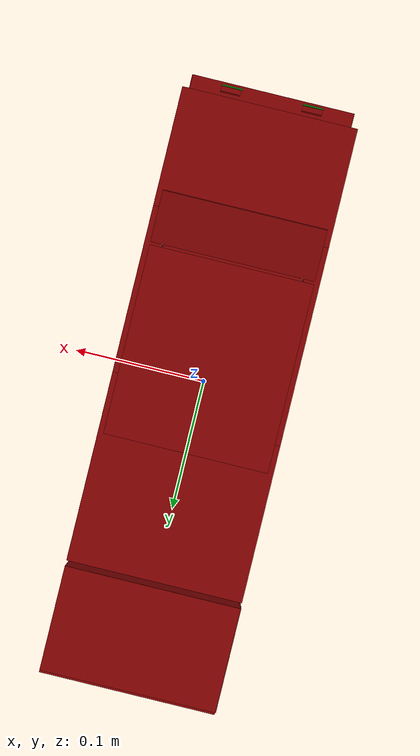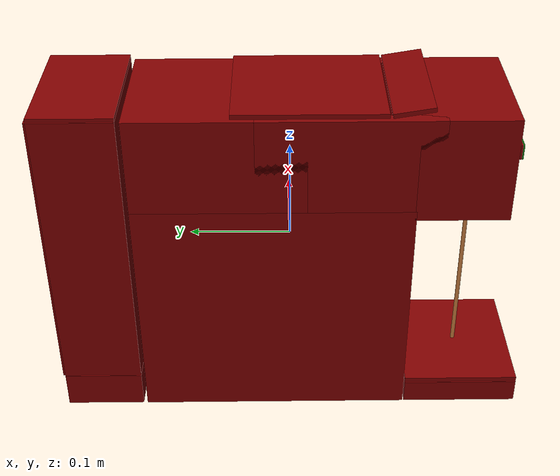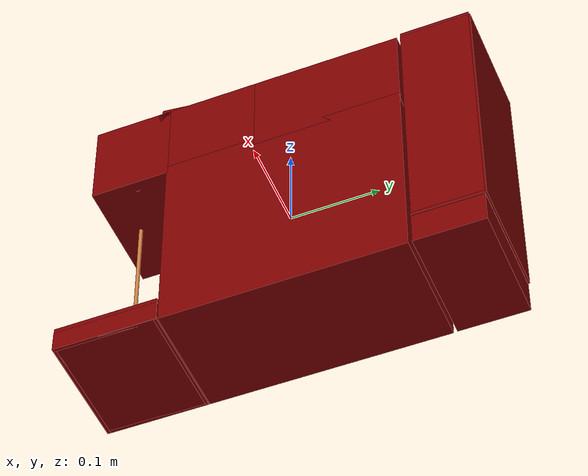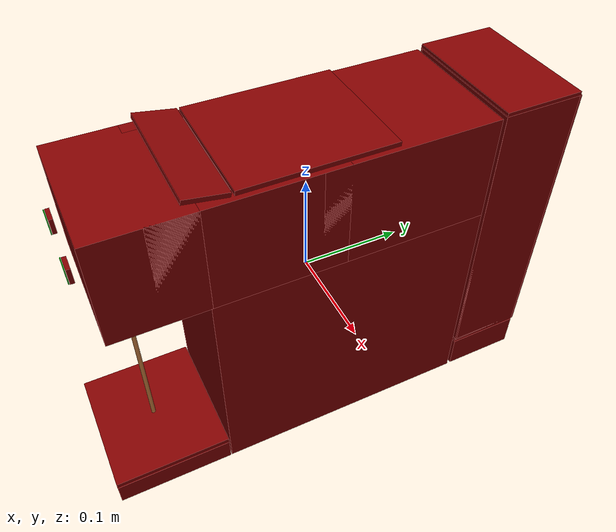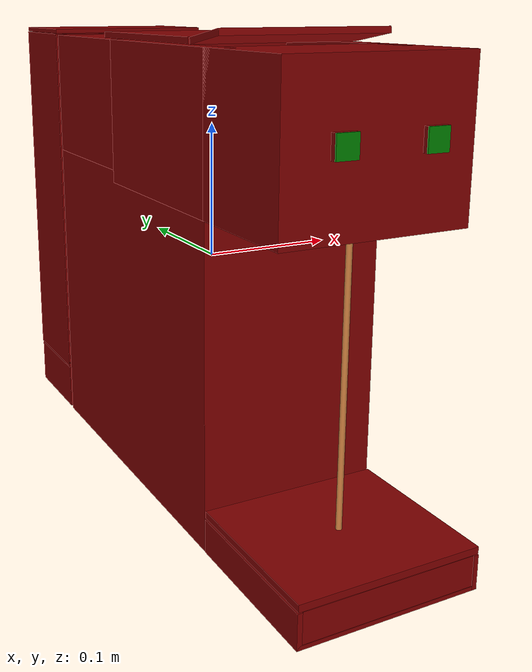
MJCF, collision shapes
<?xml version='1.0' encoding='UTF-8'?>
<mujoco model="model">
  <compiler angle="radian"/>
  <asset>
    <mesh file="visuals/Body001.obj" name="Body001_vis"/>
    <mesh file="visuals/Button001.obj" name="Button001_vis"/>
    <mesh file="visuals/Button002.obj" name="Button002_vis"/>
    <mesh file="visuals/Container001_Clear.obj" name="Container001_Clear_vis"/>
    <mesh file="visuals/Lid001.obj" name="Lid001_vis"/>
    <mesh file="visuals/Lid002_Clear.obj" name="Lid002_Clear_vis"/>
    <mesh file="visuals/Lid003.obj" name="Lid003_vis"/>
    <texture file="visuals/T_BC001.png" name="Body001_material" type="2d"/>
    <material name="Body001_material" rgba="1 1 1 1.0" texture="Body001_material" shininess="0.4472135901451111" specular="0.3103448502657381"/>
    <texture file="visuals/T_BC001.png" name="Button001_material" type="2d"/>
    <material name="Button001_material" rgba="1 1 1 1.0" texture="Button001_material" shininess="0.4472135901451111" specular="0.3103448502657381"/>
    <texture file="visuals/T_BC001.png" name="Button002_material" type="2d"/>
    <material name="Button002_material" rgba="1 1 1 1.0" texture="Button002_material" shininess="0.4472135901451111" specular="0.3103448502657381"/>
    <texture file="visuals/T_BC001.png" name="Container001_Clear_material" type="2d"/>
    <material name="Container001_Clear_material" rgba="1 1 1 0.5" texture="Container001_Clear_material" shininess="0.4472135901451111" specular="0.3103448502657381"/>
    <texture file="visuals/T_BC001.png" name="Lid002_Clear_material" type="2d"/>
    <material name="Lid002_Clear_material" rgba="1 1 1 0.5" texture="Lid002_Clear_material" shininess="0.4472135901451111" specular="0.3103448502657381"/>
    <texture file="visuals/T_BC001.png" name="Lid001_material" type="2d"/>
    <material name="Lid001_material" rgba="1 1 1 1.0" texture="Lid001_material" shininess="0.4472135901451111" specular="0.3103448502657381"/>
    <texture file="visuals/T_BC001.png" name="Lid003_material" type="2d"/>
    <material name="Lid003_material" rgba="1 1 1 1.0" texture="Lid003_material" shininess="0.4472135901451111" specular="0.3103448502657381"/>
  </asset>
  <default>
    <default class="visual">
      <geom conaffinity="0" contype="0" group="1" type="mesh"/>
    </default>
    <default class="collision">
      <geom group="0" rgba="0.5 0 0 0.5"/>
    </default>
    <default class="spawn">
      <geom group="0" rgba="1 1 1 0.5" contype="0" conaffinity="0"/>
      <site group="0" rgba="1 1 1 0.5"/>
    </default>
    <default class="region">
      <geom group="1" conaffinity="0" contype="0" rgba="0 1 0 0"/>
    </default>
  </default>
  <worldbody>
    <body>
      <body name="object">
        <geom class="collision" type="box" pos="-0.030616149306297302 -0.216434508562088 0.11246190220117569" size="0.007607913576066494 0.000489116064272821 0.007607907056808472" quat="1.0 0.0 0.0 0.0" name="start_button_1" rgba="0.0 0.5 0 0.5"/>
        <geom class="collision" type="box" pos="0.03072347491979599 -0.216434508562088 0.11246190220117569" size="0.007607913576066494 0.000489116064272821 0.007607907056808472" quat="1.0 0.0 0.0 0.0" name="start_button_2" rgba="0.0 0.5 0 0.5"/>
        <site type="cylinder" rgba="0.8 0.5 0.25 1" size="0.0021251689177006483 0.1137041226029396" pos="0.0005083419382572174 -0.17765355110168457 -0.05330929532647133" name="coffee_liquid"/>
        <site rgba="0 0 0 0" size="0.009999999776482582 0.009999999776482582" pos="0.0 -0.17718325555324554 -0.14677682518959045" name="receptacle_place_site"/>
        <geom mesh="Body001_vis" type="mesh" solimp="0.998 0.998 0.001" solref="0.001 1" density="100" friction="0.95 0.3 0.1" class="visual" material="Body001_material"/>
        <geom class="collision" type="box" pos="-8.271806125530277e-25 0.016483120620250702 -0.05334841087460518" size="0.06600822508335114 0.13423846662044525 0.11875934898853302" quat="1.0 0.0 0.0 0.0"/>
        <geom class="collision" type="box" pos="-8.271806125530277e-25 -0.16104024648666382 0.10836664587259293" size="0.06600822508335114 0.04473061114549637 0.052359841763973236" quat="1.0 0.0 0.0 0.0"/>
        <geom class="collision" type="box" pos="-8.271806125530277e-25 0.19386471807956696 -0.1530047059059143" size="0.06600822508335114 0.03906860575079918 0.018554944545030594" quat="1.0 0.0 0.0 0.0"/>
        <geom class="collision" type="box" pos="0.0 -0.12081402540206909 -0.15943431854248047" size="0.06600822508335114 0.001609809696674347 0.012229759246110916" quat="1.0 0.0 0.0 0.0"/>
        <geom class="collision" type="box" pos="-8.271806125530277e-25 0.06766687333583832 0.10836654901504517" size="0.06600822508335114 0.08305472135543823 0.052359744906425476" quat="1.0 0.0 0.0 0.0"/>
        <geom class="collision" type="box" pos="0.05978389456868172 -0.07468283921480179 0.10836664587259293" size="0.006224330514669418 0.08350387960672379 0.052359841763973236" quat="1.0 0.0 0.0 0.0"/>
        <geom class="collision" type="box" pos="-0.059783875942230225 -0.05356161296367645 0.10836664587259293" size="0.00622435100376606 0.08640749752521515 0.052359841763973236" quat="1.0 0.0 0.0 0.0"/>
        <geom class="collision" type="box" pos="0.0 -0.1771990954875946 -0.1701851785182953" size="0.06600822508335114 0.05799488350749016 0.0014789002016186714" quat="1.0 0.0 0.0 0.0"/>
        <geom class="collision" type="box" pos="-0.06474342942237854 -0.1771990954875946 -0.15943431854248047" size="0.0017591975629329681 0.05799488350749016 0.012229759246110916" quat="1.0 0.0 0.0 0.0"/>
        <geom class="collision" type="box" pos="0.06474414467811584 -0.1771990954875946 -0.15943431854248047" size="0.0017591975629329681 0.05799488350749016 0.012229759246110916" quat="1.0 0.0 0.0 0.0"/>
        <geom class="collision" type="box" pos="0.0 -0.23299594223499298 -0.15943431854248047" size="0.06600822508335114 0.0017591938376426697 0.012229759246110916" quat="1.0 0.0 0.0 0.0"/>
        <body name="Button001">
          <joint axis="0.0 1.0 0.0" pos="-0.030695753172039986 -0.21127310395240784 0.11243197321891785" limited="true" name="Button001_joint" range="0.0 0.002" type="slide" damping="1" frictionloss="1" armature=".01" stiffness="0.05"/>
          <geom mesh="Button001_vis" type="mesh" solimp="0.998 0.998 0.001" solref="0.001 1" density="100" friction="0.95 0.3 0.1" class="visual" material="Button001_material"/>
          <geom class="collision" type="box" pos="-0.030616149306297302 -0.21367265284061432 0.11246190220117569" size="0.007607913576066494 0.0018707525450736284 0.007607907056808472" quat="1.0 0.0 0.0 0.0"/>
        </body>
        <body name="Button002">
          <joint axis="0.0 1.0 0.0" pos="-0.010228728875517845 -0.21127310395240784 0.11243197321891785" limited="true" name="Button002_joint" range="0.0 0.002" type="slide" damping="1" frictionloss="1" armature=".01" stiffness="0.05"/>
          <geom mesh="Button002_vis" type="mesh" solimp="0.998 0.998 0.001" solref="0.001 1" density="100" friction="0.95 0.3 0.1" class="visual" material="Button002_material"/>
          <geom class="collision" type="box" pos="0.031241320073604584 -0.2137511819601059 0.11246190220117569" size="0.007607912644743919 0.0018707525450736284 0.007607907056808472" quat="1.0 0.0 0.0 0.0"/>
        </body>
        <body name="Container001_Clear">
          <joint axis="0.0 0.0 1.0" pos="0.0 0.19485530257225037 -0.005329817533493042" limited="true" name="Container001_Clear_joint" range="0.0 0.08" type="slide" damping="1" frictionloss="1" armature=".01" stiffness="0.05"/>
          <geom mesh="Container001_Clear_vis" type="mesh" solimp="0.998 0.998 0.001" solref="0.001 1" density="100" friction="0.95 0.3 0.1" class="visual" material="Container001_Clear_material"/>
          <geom class="collision" type="box" pos="1.2940673237491907e-17 0.23374684154987335 0.014187321066856384" size="0.06600822508335114 0.0010084304958581924 0.1471361666917801" quat="1.0 0.0 0.0 0.0"/>
          <geom class="collision" type="box" pos="1.2940673237491907e-17 0.15572774410247803 0.014187321066856384" size="0.06600822508335114 0.0009316392242908478 0.1471361666917801" quat="1.0 0.0 0.0 0.0"/>
          <geom class="collision" type="box" pos="0.06524717807769775 0.19386471807956696 0.014187321066856384" size="0.0007610432803630829 0.03906860575079918 0.1471361666917801" quat="1.0 0.0 0.0 0.0"/>
          <geom class="collision" type="box" pos="-0.06565093994140625 0.19386471807956696 0.014187321066856384" size="0.0008520223200321198 0.03906860575079918 0.1471361666917801" quat="1.0 0.0 0.0 0.0"/>
          <geom class="collision" type="box" pos="-8.271806125530277e-25 0.19386471807956696 -0.13111083209514618" size="0.06600822508335114 0.03906860575079918 0.0016964892856776714" quat="1.0 0.0 0.0 0.0"/>
          <body name="Lid002_Clear">
            <joint axis="0.0 0.0 1.0" pos="2.086162353975851e-08 0.19485530257225037 0.15852975845336914" limited="true" name="Lid002_Clear_joint" range="0.0 0.08" type="slide" damping="1" frictionloss="1" armature=".01" stiffness="0.05"/>
            <geom mesh="Lid002_Clear_vis" type="mesh" solimp="0.998 0.998 0.001" solref="0.001 1" density="100" friction="0.95 0.3 0.1" class="visual" material="Lid002_Clear_material"/>
            <geom class="collision" type="box" pos="-8.271806125530277e-25 0.19386471807956696 0.16363339126110077" size="0.06600822508335114 0.03906860575079918 0.0016964892856776714" quat="1.0 0.0 0.0 0.0"/>
          </body>
        </body>
        <body name="Lid001">
          <joint axis="-1.0 0.0 0.0" pos="3.0219553082133643e-07 0.05478830635547638 0.16332246363162994" limited="true" name="Lid001_joint" range="0.0 1.5707963267948966" type="hinge" damping="1" frictionloss="1" armature=".01" stiffness="0.05"/>
          <geom mesh="Lid001_vis" type="mesh" solimp="0.998 0.998 0.001" solref="0.001 1" density="100" friction="0.95 0.3 0.1" class="visual" material="Lid001_material"/>
          <geom class="collision" type="box" pos="0.0 -0.016775110736489296 0.16355444490909576" size="0.061771005392074585 0.07097547501325607 0.002184169599786401" quat="1.0 0.0 0.0 0.0"/>
          <geom class="collision" type="box" pos="-6.685153252476867e-19 -0.10946334898471832 0.1665651649236679" size="0.061771005392074585 0.019445419311523438 0.002184169366955757" quat="0.9967008829116821 -0.08116225898265839 1.802158879106825e-17 -3.546500115402923e-24"/>
        </body>
        <body name="Lid003">
          <joint axis="0.0 0.0 1.0" pos="3.948807716369629e-07 -0.17683036625385284 -0.1449340581893921" limited="true" name="Lid003_joint" range="0.0 0.02" type="slide" damping="1" frictionloss="1" armature=".01" stiffness="0.05"/>
          <geom mesh="Lid003_vis" type="mesh" solimp="0.998 0.998 0.001" solref="0.001 1" density="100" friction="0.95 0.3 0.1" class="visual" material="Lid003_material"/>
          <geom class="collision" type="box" pos="1.5772807305975465e-17 -0.1771990954875946 -0.14394459128379822" size="0.06600822508335114 0.05799487978219986 0.002486852463334799" quat="1.0 0.0 0.0 0.0"/>
        </body>
        <geom class="region" name="reg_main" type="box" pos="0.0 0.0 0.0" size="0.06685127317905426 0.234755277633667 0.17198313772678375"/>
      </body>
    </body>
  </worldbody>
  <actuator>
    <motor name="Button001_joint_actuator" joint="Button001_joint" gear="0.5"/>
    <motor name="Button002_joint_actuator" joint="Button002_joint" gear="0.5"/>
    <motor name="Container001_Clear_joint_actuator" joint="Container001_Clear_joint" gear="40"/>
    <motor name="Lid001_joint_actuator" joint="Lid001_joint" gear="5"/>
    <motor name="Lid003_joint_actuator" joint="Lid003_joint" gear="5"/>
    <motor name="Lid002_Clear_joint_actuator" joint="Lid002_Clear_joint" gear="2"/>
  </actuator>
</mujoco>
